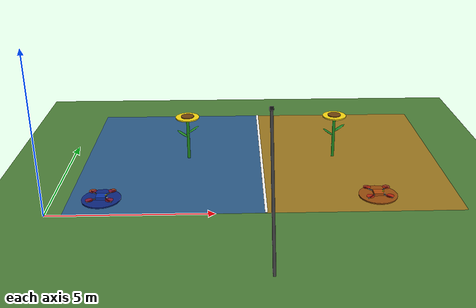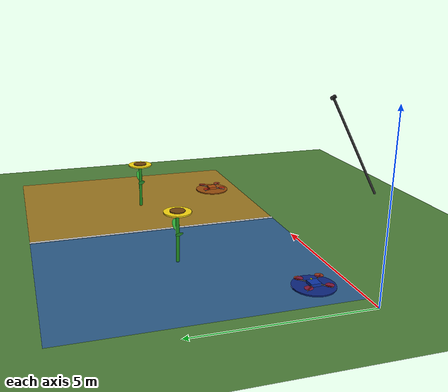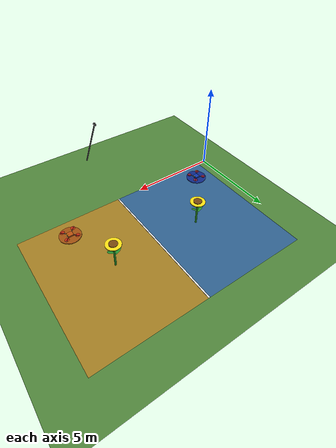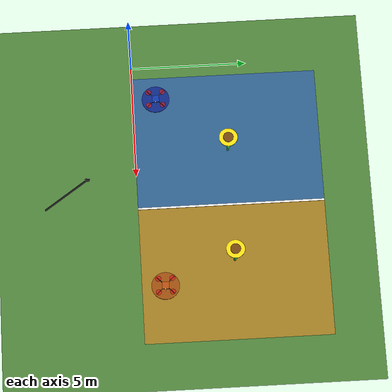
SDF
<?xml version="1.0" ?>
<sdf version="1.9">
  <world name="demo_stage14">

    <!-- ═══════════════════════════════════════════════════
         PHYSICS + SYSTEM PLUGINS
         ═══════════════════════════════════════════════════ -->
    <physics name="1ms" type="ignored">
      <max_step_size>0.004</max_step_size>
      <real_time_factor>1.0</real_time_factor>
      <real_time_update_rate>250</real_time_update_rate>
    </physics>

    <plugin filename="gz-sim-physics-system"
            name="gz::sim::systems::Physics"/>
    <plugin filename="gz-sim-sensors-system"
            name="gz::sim::systems::Sensors">
      <render_engine>ogre2</render_engine>
    </plugin>
    <plugin filename="gz-sim-scene-broadcaster-system"
            name="gz::sim::systems::SceneBroadcaster"/>
    <plugin filename="gz-sim-user-commands-system"
            name="gz::sim::systems::UserCommands"/>
    <plugin filename="gz-sim-contact-system"
            name="gz::sim::systems::Contact"/>

    <gravity>0 0 -9.8</gravity>
    <atmosphere type="adiabatic"/>

    <scene>
      <grid>false</grid>
      <ambient>0.95 0.95 0.95</ambient>
      <background>0.65 0.78 0.95</background>
      <sky/>
    </scene>

    <light name="sun" type="directional">
      <cast_shadows>true</cast_shadows>
      <pose>0 0 12 0 0 0</pose>
      <diffuse>1.0 0.97 0.9 1</diffuse>
      <specular>0.3 0.3 0.3 1</specular>
      <direction>-0.3 0.2 -0.9</direction>
      <attenuation><range>1000</range><constant>0.9</constant>
        <linear>0.005</linear><quadratic>0.001</quadratic></attenuation>
    </light>

    <!-- ═══════════════════════════════════════════════════
         GROUND
         ═══════════════════════════════════════════════════ -->
    <model name="ground_plane">
      <static>true</static>
      <link name="link">
        <collision name="c">
          <geometry><plane><normal>0 0 1</normal>
            <size>50 50</size></plane></geometry>
        </collision>
        <visual name="v">
          <cast_shadows>false</cast_shadows>
          <geometry><plane><normal>0 0 1</normal>
            <size>50 50</size></plane></geometry>
          <material>
            <ambient>0.30 0.50 0.22 1</ambient>
            <diffuse>0.30 0.50 0.22 1</diffuse>
          </material>
        </visual>
      </link>
    </model>

    <!-- Sector 1 ground tile (blue) -->
    <model name="sector1_tile">
      <static>true</static>
      <pose>3.5 4.0 0.005 0 0 0</pose>
      <link name="l">
        <visual name="v">
          <geometry><box><size>6.0 8.0 0.01</size></box></geometry>
          <material>
            <ambient>0.12 0.30 0.85 0.55</ambient>
            <diffuse>0.12 0.30 0.85 0.55</diffuse>
          </material>
        </visual>
      </link>
    </model>

    <!-- Sector 2 ground tile (orange) -->
    <model name="sector2_tile">
      <static>true</static>
      <pose>9.5 4.0 0.005 0 0 0</pose>
      <link name="l">
        <visual name="v">
          <geometry><box><size>6.0 8.0 0.01</size></box></geometry>
          <material>
            <ambient>0.92 0.50 0.10 0.55</ambient>
            <diffuse>0.92 0.50 0.10 0.55</diffuse>
          </material>
        </visual>
      </link>
    </model>

    <!-- Sector boundary line (white) -->
    <model name="sector_boundary">
      <static>true</static>
      <pose>6.5 4.0 0.015 0 0 0</pose>
      <link name="l">
        <visual name="v">
          <geometry><box><size>0.08 8.0 0.02</size></box></geometry>
          <material>
            <ambient>1 1 1 1</ambient>
            <diffuse>1 1 1 1</diffuse>
          </material>
        </visual>
      </link>
    </model>

    <!-- Base pads (where each drone starts and returns) -->
    <model name="base_pad_0">
      <static>true</static>
      <pose>1.5 1.0 0.02 0 0 0</pose>
      <link name="l">
        <visual name="v">
          <geometry><cylinder><radius>0.6</radius>
            <length>0.04</length></cylinder></geometry>
          <material>
            <ambient>0.05 0.15 0.5 1</ambient>
            <diffuse>0.05 0.15 0.5 1</diffuse>
          </material>
        </visual>
      </link>
    </model>
    <model name="base_pad_1">
      <static>true</static>
      <pose>10.0 1.0 0.02 0 0 0</pose>
      <link name="l">
        <visual name="v">
          <geometry><cylinder><radius>0.6</radius>
            <length>0.04</length></cylinder></geometry>
          <material>
            <ambient>0.6 0.3 0.05 1</ambient>
            <diffuse>0.6 0.3 0.05 1</diffuse>
          </material>
        </visual>
      </link>
    </model>

    <model name="sunflower_1">
      <static>true</static>
      <pose>4.0 4.0 0.0 0 0 0</pose>
      <link name="stem">
        <pose>0 0 0.75 0 0 0</pose>
        <visual name="v">
          <geometry><cylinder><radius>0.05</radius>
            <length>1.5</length></cylinder></geometry>
          <material><ambient>0.12 0.55 0.12 1</ambient>
            <diffuse>0.12 0.55 0.12 1</diffuse></material>
        </visual>
      </link>
      <link name="leaf_left">
        <pose>-0.18 0 0.9 0 0.6 0</pose>
        <visual name="v">
          <geometry><ellipsoid><radii>0.22 0.10 0.02</radii></ellipsoid></geometry>
          <material><ambient>0.15 0.6 0.18 1</ambient>
            <diffuse>0.15 0.6 0.18 1</diffuse></material>
        </visual>
      </link>
      <link name="leaf_right">
        <pose>0.18 0 1.05 0 -0.6 0</pose>
        <visual name="v">
          <geometry><ellipsoid><radii>0.22 0.10 0.02</radii></ellipsoid></geometry>
          <material><ambient>0.15 0.6 0.18 1</ambient>
            <diffuse>0.15 0.6 0.18 1</diffuse></material>
        </visual>
      </link>
      <link name="petals">
        <pose>0 0 1.5 0 0 0</pose>
        <visual name="v">
          <geometry><cylinder><radius>0.40</radius>
            <length>0.04</length></cylinder></geometry>
          <material><ambient>0.98 0.85 0.06 1</ambient>
            <diffuse>0.98 0.85 0.06 1</diffuse></material>
        </visual>
      </link>
      <link name="head">
        <pose>0 0 1.52 0 0 0</pose>
        <visual name="v">
          <geometry><cylinder><radius>0.22</radius>
            <length>0.06</length></cylinder></geometry>
          <material><ambient>0.45 0.27 0.05 1</ambient>
            <diffuse>0.45 0.27 0.05 1</diffuse></material>
        </visual>
      </link>
    </model>

    <model name="sunflower_2">
      <static>true</static>
      <pose>9.0 4.0 0.0 0 0 0</pose>
      <link name="stem">
        <pose>0 0 0.75 0 0 0</pose>
        <visual name="v">
          <geometry><cylinder><radius>0.05</radius>
            <length>1.5</length></cylinder></geometry>
          <material><ambient>0.12 0.55 0.12 1</ambient>
            <diffuse>0.12 0.55 0.12 1</diffuse></material>
        </visual>
      </link>
      <link name="leaf_left">
        <pose>-0.18 0 0.9 0 0.6 0</pose>
        <visual name="v">
          <geometry><ellipsoid><radii>0.22 0.10 0.02</radii></ellipsoid></geometry>
          <material><ambient>0.15 0.6 0.18 1</ambient>
            <diffuse>0.15 0.6 0.18 1</diffuse></material>
        </visual>
      </link>
      <link name="leaf_right">
        <pose>0.18 0 1.05 0 -0.6 0</pose>
        <visual name="v">
          <geometry><ellipsoid><radii>0.22 0.10 0.02</radii></ellipsoid></geometry>
          <material><ambient>0.15 0.6 0.18 1</ambient>
            <diffuse>0.15 0.6 0.18 1</diffuse></material>
        </visual>
      </link>
      <link name="petals">
        <pose>0 0 1.5 0 0 0</pose>
        <visual name="v">
          <geometry><cylinder><radius>0.40</radius>
            <length>0.04</length></cylinder></geometry>
          <material><ambient>0.98 0.85 0.06 1</ambient>
            <diffuse>0.98 0.85 0.06 1</diffuse></material>
        </visual>
      </link>
      <link name="head">
        <pose>0 0 1.52 0 0 0</pose>
        <visual name="v">
          <geometry><cylinder><radius>0.22</radius>
            <length>0.06</length></cylinder></geometry>
          <material><ambient>0.45 0.27 0.05 1</ambient>
            <diffuse>0.45 0.27 0.05 1</diffuse></material>
        </visual>
      </link>
    </model>

    <model name="drone_0">
      <pose>1.5 1.0 0.10 0 0 0</pose>
      <self_collide>false</self_collide>

      <link name="base_link">
        <gravity>false</gravity>

        <inertial>
          <mass>1.5</mass>
          <inertia>
            <ixx>0.03</ixx><iyy>0.03</iyy><izz>0.06</izz>
            <ixy>0</ixy><ixz>0</ixz><iyz>0</iyz>
          </inertia>
        </inertial>

        <!-- Central body -->
        <visual name="body">
          <geometry><box><size>0.30 0.30 0.08</size></box></geometry>
          <material>
            <ambient>0.05 0.20 0.65 1</ambient>
            <diffuse>0.05 0.20 0.65 1</diffuse>
          </material>
        </visual>
        <collision name="body_c">
          <geometry><box><size>0.30 0.30 0.08</size></box></geometry>
        </collision>

        <!-- Four arms -->
        <visual name="arm_fl">
          <pose>0.22 0.22 0 0 0 0.7854</pose>
          <geometry><box><size>0.42 0.025 0.025</size></box></geometry>
          <material><ambient>0.1 0.1 0.1 1</ambient>
            <diffuse>0.1 0.1 0.1 1</diffuse></material>
        </visual>
        <visual name="arm_fr">
          <pose>0.22 -0.22 0 0 0 -0.7854</pose>
          <geometry><box><size>0.42 0.025 0.025</size></box></geometry>
          <material><ambient>0.1 0.1 0.1 1</ambient>
            <diffuse>0.1 0.1 0.1 1</diffuse></material>
        </visual>
        <visual name="arm_bl">
          <pose>-0.22 0.22 0 0 0 -0.7854</pose>
          <geometry><box><size>0.42 0.025 0.025</size></box></geometry>
          <material><ambient>0.1 0.1 0.1 1</ambient>
            <diffuse>0.1 0.1 0.1 1</diffuse></material>
        </visual>
        <visual name="arm_br">
          <pose>-0.22 -0.22 0 0 0 0.7854</pose>
          <geometry><box><size>0.42 0.025 0.025</size></box></geometry>
          <material><ambient>0.1 0.1 0.1 1</ambient>
            <diffuse>0.1 0.1 0.1 1</diffuse></material>
        </visual>

        <!-- Four propellers (visual disks at arm tips) -->
        <visual name="prop_fl">
          <pose>0.30 0.30 0.04 0 0 0</pose>
          <geometry><cylinder><radius>0.12</radius>
            <length>0.01</length></cylinder></geometry>
          <material><ambient>0.85 0.1 0.1 0.6</ambient>
            <diffuse>0.85 0.1 0.1 0.6</diffuse></material>
        </visual>
        <visual name="prop_fr">
          <pose>0.30 -0.30 0.04 0 0 0</pose>
          <geometry><cylinder><radius>0.12</radius>
            <length>0.01</length></cylinder></geometry>
          <material><ambient>0.85 0.1 0.1 0.6</ambient>
            <diffuse>0.85 0.1 0.1 0.6</diffuse></material>
        </visual>
        <visual name="prop_bl">
          <pose>-0.30 0.30 0.04 0 0 0</pose>
          <geometry><cylinder><radius>0.12</radius>
            <length>0.01</length></cylinder></geometry>
          <material><ambient>0.85 0.1 0.1 0.6</ambient>
            <diffuse>0.85 0.1 0.1 0.6</diffuse></material>
        </visual>
        <visual name="prop_br">
          <pose>-0.30 -0.30 0.04 0 0 0</pose>
          <geometry><cylinder><radius>0.12</radius>
            <length>0.01</length></cylinder></geometry>
          <material><ambient>0.85 0.1 0.1 0.6</ambient>
            <diffuse>0.85 0.1 0.1 0.6</diffuse></material>
        </visual>

        <!-- Forward-facing marker (so orientation is visible) -->
        <visual name="forward_marker">
          <pose>0.15 0 0.045 0 0 0</pose>
          <geometry><box><size>0.06 0.04 0.01</size></box></geometry>
          <material><ambient>1.0 1.0 0.05 1</ambient>
            <diffuse>1.0 1.0 0.05 1</diffuse></material>
        </visual>

        <!-- Pollination rod (small cylinder extending forward) -->
        <visual name="poll_rod">
          <pose>0.18 0 -0.04 0 1.5708 0</pose>
          <geometry><cylinder><radius>0.008</radius>
            <length>0.10</length></cylinder></geometry>
          <material><ambient>0.95 0.95 0.95 1</ambient>
            <diffuse>0.95 0.95 0.95 1</diffuse></material>
        </visual>
      </link>

      <!-- Velocity control plugin — accepts gz.msgs.Twist on
           /model/drone_0/cmd_vel and applies it directly. -->
      <plugin
        filename="gz-sim-velocity-control-system"
        name="gz::sim::systems::VelocityControl">
      </plugin>

      <!-- Publish model pose to /model/drone_0/pose at 50 Hz -->
      <plugin
        filename="gz-sim-pose-publisher-system"
        name="gz::sim::systems::PosePublisher">
        <publish_link_pose>false</publish_link_pose>
        <publish_visual_pose>false</publish_visual_pose>
        <publish_collision_pose>false</publish_collision_pose>
        <publish_model_pose>true</publish_model_pose>
        <publish_nested_model_pose>false</publish_nested_model_pose>
        <use_pose_vector_msg>false</use_pose_vector_msg>
        <static_publisher>false</static_publisher>
        <update_frequency>50</update_frequency>
      </plugin>
    </model>

    <!-- ═══════════════════════════════════════════════════
         DRONE 1 — Sector 2
         ═══════════════════════════════════════════════════ -->
    <model name="drone_1">
      <pose>10.0 1.0 0.10 0 0 0</pose>
      <self_collide>false</self_collide>

      <link name="base_link">
        <gravity>false</gravity>

        <inertial>
          <mass>1.5</mass>
          <inertia>
            <ixx>0.03</ixx><iyy>0.03</iyy><izz>0.06</izz>
            <ixy>0</ixy><ixz>0</ixz><iyz>0</iyz>
          </inertia>
        </inertial>

        <visual name="body">
          <geometry><box><size>0.30 0.30 0.08</size></box></geometry>
          <material>
            <ambient>0.70 0.30 0.05 1</ambient>
            <diffuse>0.70 0.30 0.05 1</diffuse>
          </material>
        </visual>
        <collision name="body_c">
          <geometry><box><size>0.30 0.30 0.08</size></box></geometry>
        </collision>

        <visual name="arm_fl">
          <pose>0.22 0.22 0 0 0 0.7854</pose>
          <geometry><box><size>0.42 0.025 0.025</size></box></geometry>
          <material><ambient>0.1 0.1 0.1 1</ambient>
            <diffuse>0.1 0.1 0.1 1</diffuse></material>
        </visual>
        <visual name="arm_fr">
          <pose>0.22 -0.22 0 0 0 -0.7854</pose>
          <geometry><box><size>0.42 0.025 0.025</size></box></geometry>
          <material><ambient>0.1 0.1 0.1 1</ambient>
            <diffuse>0.1 0.1 0.1 1</diffuse></material>
        </visual>
        <visual name="arm_bl">
          <pose>-0.22 0.22 0 0 0 -0.7854</pose>
          <geometry><box><size>0.42 0.025 0.025</size></box></geometry>
          <material><ambient>0.1 0.1 0.1 1</ambient>
            <diffuse>0.1 0.1 0.1 1</diffuse></material>
        </visual>
        <visual name="arm_br">
          <pose>-0.22 -0.22 0 0 0 0.7854</pose>
          <geometry><box><size>0.42 0.025 0.025</size></box></geometry>
          <material><ambient>0.1 0.1 0.1 1</ambient>
            <diffuse>0.1 0.1 0.1 1</diffuse></material>
        </visual>

        <visual name="prop_fl">
          <pose>0.30 0.30 0.04 0 0 0</pose>
          <geometry><cylinder><radius>0.12</radius>
            <length>0.01</length></cylinder></geometry>
          <material><ambient>0.85 0.1 0.1 0.6</ambient>
            <diffuse>0.85 0.1 0.1 0.6</diffuse></material>
        </visual>
        <visual name="prop_fr">
          <pose>0.30 -0.30 0.04 0 0 0</pose>
          <geometry><cylinder><radius>0.12</radius>
            <length>0.01</length></cylinder></geometry>
          <material><ambient>0.85 0.1 0.1 0.6</ambient>
            <diffuse>0.85 0.1 0.1 0.6</diffuse></material>
        </visual>
        <visual name="prop_bl">
          <pose>-0.30 0.30 0.04 0 0 0</pose>
          <geometry><cylinder><radius>0.12</radius>
            <length>0.01</length></cylinder></geometry>
          <material><ambient>0.85 0.1 0.1 0.6</ambient>
            <diffuse>0.85 0.1 0.1 0.6</diffuse></material>
        </visual>
        <visual name="prop_br">
          <pose>-0.30 -0.30 0.04 0 0 0</pose>
          <geometry><cylinder><radius>0.12</radius>
            <length>0.01</length></cylinder></geometry>
          <material><ambient>0.85 0.1 0.1 0.6</ambient>
            <diffuse>0.85 0.1 0.1 0.6</diffuse></material>
        </visual>

        <visual name="forward_marker">
          <pose>0.15 0 0.045 0 0 0</pose>
          <geometry><box><size>0.06 0.04 0.01</size></box></geometry>
          <material><ambient>1.0 1.0 0.05 1</ambient>
            <diffuse>1.0 1.0 0.05 1</diffuse></material>
        </visual>

        <visual name="poll_rod">
          <pose>0.18 0 -0.04 0 1.5708 0</pose>
          <geometry><cylinder><radius>0.008</radius>
            <length>0.10</length></cylinder></geometry>
          <material><ambient>0.95 0.95 0.95 1</ambient>
            <diffuse>0.95 0.95 0.95 1</diffuse></material>
        </visual>
      </link>

      <plugin
        filename="gz-sim-velocity-control-system"
        name="gz::sim::systems::VelocityControl">
      </plugin>

      <plugin
        filename="gz-sim-pose-publisher-system"
        name="gz::sim::systems::PosePublisher">
        <publish_link_pose>false</publish_link_pose>
        <publish_model_pose>true</publish_model_pose>
        <update_frequency>50</update_frequency>
      </plugin>
    </model>

    <model name="surveillance_cam">
      <static>true</static>
      <pose>6.5 -2.0 4.0 0 0.50 1.5708</pose>
      <link name="link">
        <visual name="pole">
          <pose>0 0 -2.0 0 0 0</pose>
          <geometry><cylinder><radius>0.04</radius>
            <length>4.0</length></cylinder></geometry>
          <material><ambient>0.2 0.2 0.2 1</ambient>
            <diffuse>0.2 0.2 0.2 1</diffuse></material>
        </visual>
        <visual name="box">
          <geometry><box><size>0.18 0.10 0.10</size></box></geometry>
          <material><ambient>0.05 0.05 0.05 1</ambient>
            <diffuse>0.05 0.05 0.05 1</diffuse></material>
        </visual>
        <sensor name="cam" type="camera">
          <pose>0.10 0 0 0 0 0</pose>
          <topic>/surveillance/image</topic>
          <update_rate>15</update_rate>
          <camera>
            <horizontal_fov>1.50</horizontal_fov>
            <image><width>640</width><height>480</height>
              <format>R8G8B8</format></image>
            <clip><near>0.1</near><far>50</far></clip>
          </camera>
          <always_on>1</always_on>
          <visualize>false</visualize>
        </sensor>
      </link>
    </model>

  </world>
</sdf>
